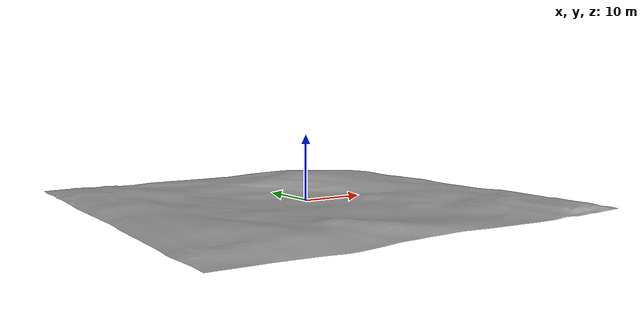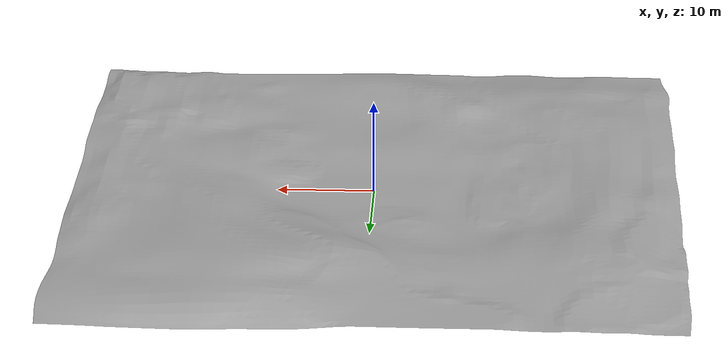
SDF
<?xml version="1.0"?>
<sdf version="1.6">
  <model name="landscape">
    <link name="link">
      <collision name="collision">
        <geometry>
          <mesh>
            <uri>model://snow_terrain/meshes/SnowTerrain.dae</uri>
          </mesh>
        </geometry>
      </collision>
      <visual name="visual">
        <geometry>
          <mesh>
            <uri>model://snow_terrain/meshes/SnowTerrain.dae</uri>
          </mesh>
        </geometry>
      </visual>
    </link>
		<static>1</static>
    <allow_auto_disable>1</allow_auto_disable>
  </model>
</sdf>
